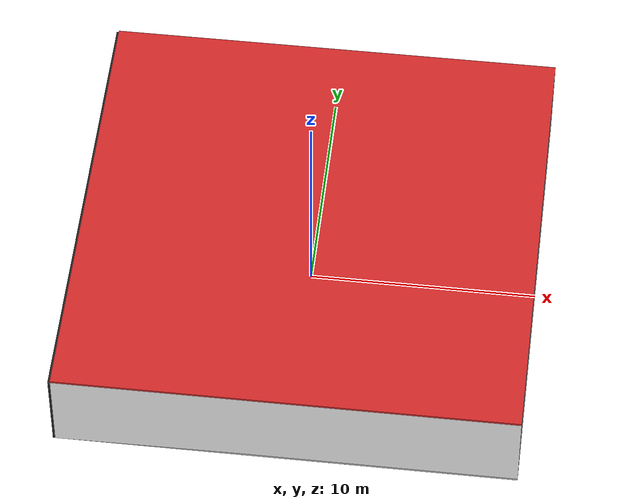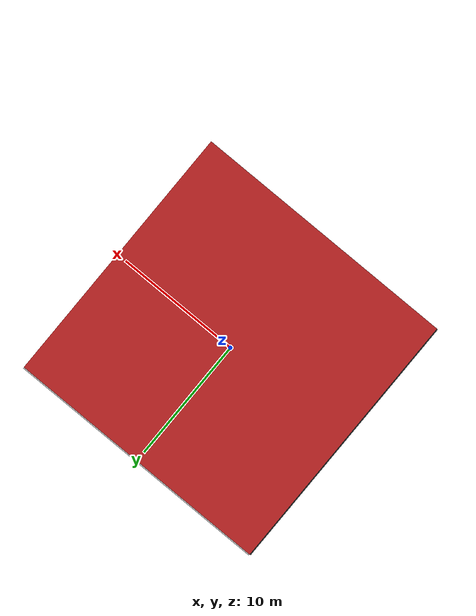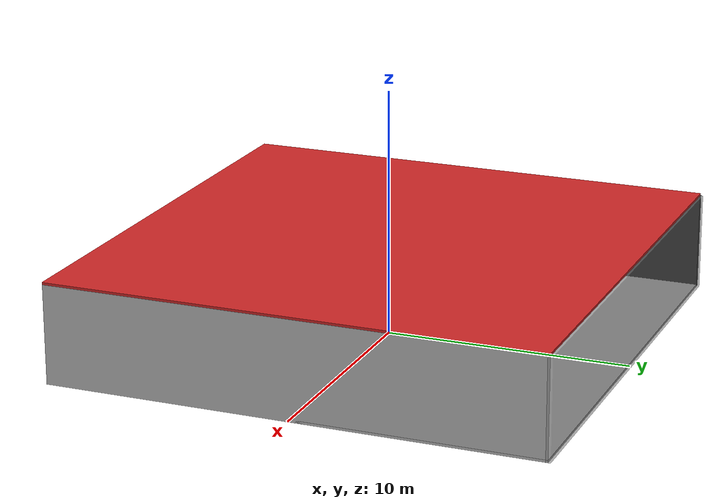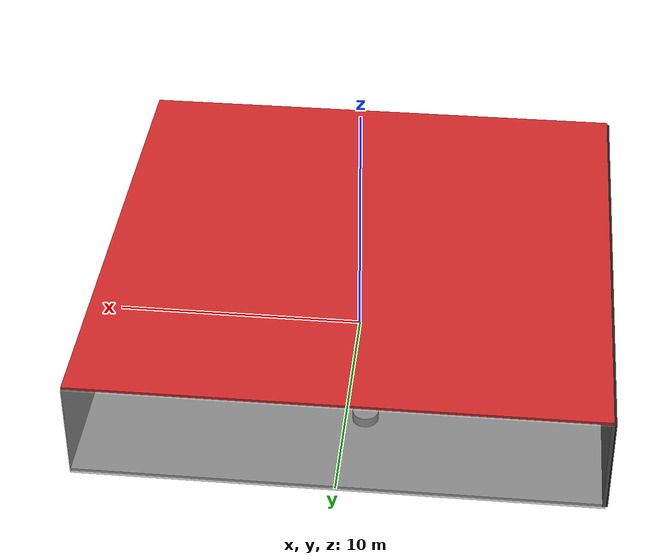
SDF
<sdf version="1.4">
 <world name="default">
  <physics type="ode">
   <max_step_size>0.001</max_step_size>
   <real_time_factor>1</real_time_factor>
   <real_time_update_rate>1000</real_time_update_rate>
   <gravity>0 0 -9.8</gravity>
  </physics>
  <scene><ambient>0.4 0.4 0.4 1</ambient><background>0.7 0.7 0.7 1</background><shadows>1</shadows></scene>
  <model name="Surrounding">
   <static>1</static>
   <link name="Ceiling">
    <collision name="Ceiling_Collision"><geometry><box><size>20 20 0.1</size></box></geometry></collision>
    <visual name="Ceiling_Visual">
     <geometry><box><size>20 20 0.1</size></box></geometry>
     <material>
      <script><uri>file://media/materials/scripts/gazebo.material</uri><name>Gazebo/Red</name></script>
     </material>
    </visual>
    <pose>0 0 4.05 0 0 0</pose>
   </link>
   <link name="Wall_South">
    <collision name="Wall_South_Collision">
     <geometry><box><size>20 0 4</size></box></geometry>
     <pose>0 0 2 0 -0 0</pose>
    </collision>
    <visual name="Wall_South_Visual">
     <pose>0 0 2 0 -0 0</pose>
     <geometry><box><size>20 0 4</size></box></geometry>
     <material>
      <script><uri>file://media/materials/scripts/gazebo.material</uri><name>Gazebo/White</name></script>
     </material>
    </visual>
    <velocity_decay><linear>0</linear><angular>0</angular></velocity_decay>
    <pose>0 -10 0 0 -0 0</pose>
   </link>
   <link name="Wall_East">
    <collision name="Wall_21_Collision">
     <geometry><box><size>20 0 4</size></box></geometry>
     <pose>0 0 2 0 -0 0</pose>
    </collision>
    <visual name="Wall_21_Visual">
     <pose>0 0 2 0 -0 0</pose>
     <geometry><box><size>20 0 4</size></box></geometry>
     <material>
      <script><uri>file://media/materials/scripts/gazebo.material</uri><name>Gazebo/Pioneer2Body</name></script>
     </material>
    </visual>
    <velocity_decay><linear>0</linear><angular>0</angular></velocity_decay>
    <pose>10 0 0 0 -0 1.5708</pose>
   </link>
   <link name="Wall_North">
    <collision name="Wall_22_Collision">
     <geometry><box><size>20 0.2 4</size></box></geometry>
     <pose>0 0 2 0 -0 0</pose>
    </collision>
    <visual name="Wall_22_Visual">
     <pose>0 0 2 0 -0 0</pose>
     <geometry><box><size>20 0.2 4</size></box></geometry>
     <material>
      <script><uri>file://media/materials/scripts/gazebo.material</uri><name>Gazebo/GreyTransparent</name></script>
     </material>
    </visual>
    <velocity_decay><linear>0</linear><angular>0</angular></velocity_decay>
    <pose>0 10 0 0 -0 0</pose>
   </link>
   <link name="Wall_West">
    <collision name="Wall_23_Collision">
     <geometry><box><size>20 0.2 4</size></box></geometry>
     <pose>0 0 2 0 -0 0</pose>
    </collision>
    <visual name="Wall_23_Visual">
     <pose>0 0 2 0 -0 0</pose>
     <geometry><box><size>20 0.2 4</size></box></geometry>
     <material>
      <script><uri>file://media/materials/scripts/gazebo.material</uri><name>Gazebo/FlatBlack</name></script>
     </material>
    </visual>
    <velocity_decay><linear>0</linear><angular>0</angular></velocity_decay>
    <pose>-10 0 0 0 0 -1.5708</pose>
   </link>
   <link name="Ground_link">
    <collision name="collision">
     <pose>0 0 .05 0 -0 0</pose>
     <geometry><box><size>20 20 0.1</size></box></geometry>
    </collision>
    <visual name="visual">
     <pose>0 0 .05 0 -0 0</pose>
     <geometry><box><size>20 20 0.1</size></box></geometry>
     <material>
      <script><uri>file://media/materials/scripts/gazebo.material</uri><name>Gazebo/LightOff</name></script>
     </material>
    </visual>
   </link>
   <static>1</static>
  </model>
  <spherical_coordinates>
   <surface_model>EARTH_WGS84</surface_model>
   <latitude_deg>0</latitude_deg>
   <longitude_deg>0</longitude_deg>
   <elevation>0</elevation>
   <heading_deg>0</heading_deg>
  </spherical_coordinates>
  <light name="lightball_0" type="diffuse">
   <diffuse>0.8 0.8 0.8 1</diffuse>
   <specular>0.2 0.2 0.2 1</specular>
   <attenuation>
    <range>100</range>
    <constant>0.7</constant>
    <linear>0.01</linear>
    <quadratic>0.001</quadratic>
   </attenuation>
   <direction>-0.5 0.1 -0.9</direction>
   <pose>-2.09617624418 -4.37894143813 0.701856498005 0 0 0</pose>
  </light>
  <light name="lightball_1" type="diffuse">
   <diffuse>0.8 0.8 0.8 1</diffuse>
   <specular>0.2 0.2 0.2 1</specular>
   <attenuation>
    <range>100</range>
    <constant>0.7</constant>
    <linear>0.01</linear>
    <quadratic>0.001</quadratic>
   </attenuation>
   <direction>-0.5 0.1 -0.9</direction>
   <pose>-6.95757819707 -0.821199038891 1.54861117534 0 0 0</pose>
  </light>
  <light name="lightball_2" type="diffuse">
   <diffuse>0.8 0.8 0.8 1</diffuse>
   <specular>0.2 0.2 0.2 1</specular>
   <attenuation>
    <range>100</range>
    <constant>0.7</constant>
    <linear>0.01</linear>
    <quadratic>0.001</quadratic>
   </attenuation>
   <direction>-0.5 0.1 -0.9</direction>
   <pose>-3.22254020311 -0.803285963348 1.02810823941 0 0 0</pose>
  </light>
  <light name="lightball_3" type="diffuse">
   <diffuse>0.8 0.8 0.8 1</diffuse>
   <specular>0.2 0.2 0.2 1</specular>
   <attenuation>
    <range>100</range>
    <constant>0.7</constant>
    <linear>0.01</linear>
    <quadratic>0.001</quadratic>
   </attenuation>
   <direction>-0.5 0.1 -0.9</direction>
   <pose>2.42219168296 -9.76876635482 0.814189282309 0 0 0</pose>
  </light>
  <light name="lightball_4" type="diffuse">
   <diffuse>0.8 0.8 0.8 1</diffuse>
   <specular>0.2 0.2 0.2 1</specular>
   <attenuation>
    <range>100</range>
    <constant>0.7</constant>
    <linear>0.01</linear>
    <quadratic>0.001</quadratic>
   </attenuation>
   <direction>-0.5 0.1 -0.9</direction>
   <pose>-0.301148699283 6.43738485183 2.91044456131 0 0 0</pose>
  </light>
  <light name="lightball_5" type="diffuse">
   <diffuse>0.8 0.8 0.8 1</diffuse>
   <specular>0.2 0.2 0.2 1</specular>
   <attenuation>
    <range>100</range>
    <constant>0.7</constant>
    <linear>0.01</linear>
    <quadratic>0.001</quadratic>
   </attenuation>
   <direction>-0.5 0.1 -0.9</direction>
   <pose>-0.705719322584 -4.65320157944 1.22968699333 0 0 0</pose>
  </light>
  <light name="lightball_6" type="diffuse">
   <diffuse>0.8 0.8 0.8 1</diffuse>
   <specular>0.2 0.2 0.2 1</specular>
   <attenuation>
    <range>100</range>
    <constant>0.7</constant>
    <linear>0.01</linear>
    <quadratic>0.001</quadratic>
   </attenuation>
   <direction>-0.5 0.1 -0.9</direction>
   <pose>4.8845411788 -2.57471267518 2.24920246277 0 0 0</pose>
  </light>
  <include><uri>model://table</uri><pose>-6.88374039235 -7.68379618942 0 0 0 1.724351192</pose></include>
  <include>
   <uri>model://construction_cone</uri>
   <pose>-7.01063702106 -2.02840211892 0 0 0 0.921934962984</pose>
  </include>
  <include>
   <uri>model://textured_shapes</uri>
   <pose>-0.739010527954 4.59284596365 0 0 0 0.0360677298173</pose>
  </include>
  <include><uri>model://cabinet</uri><pose>6.85444368096 -5.02337613867 0 0 0 2.89761398737</pose></include>
 </world>
</sdf>

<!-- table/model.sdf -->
<sdf version="1.5">
  <model name="table">
    <static>true</static>
    <link name="link">
      <collision name="surface">
        <pose>0 0 1.0 0 0 0</pose>
        <geometry>
          <box>
            <size>1.5 0.8 0.03</size>
          </box>
        </geometry>
        <surface>
          <friction>
            <ode>
              <mu>0.6</mu>
              <mu2>0.6</mu2>
            </ode>
          </friction>
        </surface>
      </collision>
      <visual name="visual1">
        <pose>0 0 1.0 0 0 0</pose>
        <geometry>
          <box>
            <size>1.5 0.8 0.03</size>
          </box>
        </geometry>
        <material>
          <script>
            <uri>model://media/materials/scripts/gazebo.material</uri>
            <name>Gazebo/Wood</name>
          </script>
        </material>
      </visual>
      <collision name="front_left_leg">
        <pose>0.68 0.38 0.5 0 0 0</pose>
        <geometry>
          <cylinder>
            <radius>0.02</radius>
            <length>1.0</length>
          </cylinder>
        </geometry>
      </collision>
      <visual name="front_left_leg">
        <pose>0.68 0.38 0.5 0 0 0</pose>
        <geometry>
          <cylinder>
            <radius>0.02</radius>
            <length>1.0</length>
          </cylinder>
        </geometry>
        <material>
          <script>
            <uri>model://media/materials/scripts/gazebo.material</uri>
            <name>Gazebo/Grey</name>
          </script>
        </material>
      </visual>
      <collision name="front_right_leg">
        <pose>0.68 -0.38 0.5 0 0 0</pose>
        <geometry>
          <cylinder>
            <radius>0.02</radius>
            <length>1.0</length>
          </cylinder>
        </geometry>
      </collision>
      <visual name="front_right_leg">
        <pose>0.68 -0.38 0.5 0 0 0</pose>
        <geometry>
          <cylinder>
            <radius>0.02</radius>
            <length>1.0</length>
          </cylinder>
        </geometry>
        <material>
          <script>
            <uri>model://media/materials/scripts/gazebo.material</uri>
            <name>Gazebo/Grey</name>
          </script>
        </material>
      </visual>
      <collision name="back_right_leg">
        <pose>-0.68 -0.38 0.5 0 0 0</pose>
        <geometry>
          <cylinder>
            <radius>0.02</radius>
            <length>1.0</length>
          </cylinder>
        </geometry>
      </collision>
      <visual name="back_right_leg">
        <pose>-0.68 -0.38 0.5 0 0 0</pose>
        <geometry>
          <cylinder>
            <radius>0.02</radius>
            <length>1.0</length>
          </cylinder>
        </geometry>
        <material>
          <script>
            <uri>model://media/materials/scripts/gazebo.material</uri>
            <name>Gazebo/Grey</name>
          </script>
        </material>
      </visual>
      <collision name="back_left_leg">
        <pose>-0.68 0.38 0.5 0 0 0</pose>
        <geometry>
          <cylinder>
            <radius>0.02</radius>
            <length>1.0</length>
          </cylinder>
        </geometry>
      </collision>
      <visual name="back_left_leg">
        <pose>-0.68 0.38 0.5 0 0 0</pose>
        <geometry>
          <cylinder>
            <radius>0.02</radius>
            <length>1.0</length>
          </cylinder>
        </geometry>
        <material>
          <script>
            <uri>model://media/materials/scripts/gazebo.material</uri>
            <name>Gazebo/Grey</name>
          </script>
        </material>
      </visual>
    </link>
  </model>
</sdf>

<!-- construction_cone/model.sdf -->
<sdf version="1.5">
  <model name="Construction Cone">
    <link name="link">
      <collision name="collision">
        <geometry>
          <mesh>
            <scale>10 10 10</scale>
            <uri>file://isr-testbed/construction_cone/meshes/construction_cone.dae</uri>
          </mesh>
        </geometry>
      </collision>
      <visual name="visual">
        <geometry>
          <mesh>
            <scale>10 10 10</scale>
            <uri>file://isr-testbed/construction_cone/meshes/construction_cone.dae</uri>
          </mesh>
        </geometry>
      </visual>
    </link>
  </model>
</sdf>

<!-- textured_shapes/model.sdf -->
<sdf version="1.6">
  <model name="textured_shapes">
    <pose>0 0 0.5 0 0 0</pose>
    <link name="box">
      <pose>0 -1.5 0 0 0 0</pose>
      <collision name="collision">
        <geometry>
          <box>
            <size>1 1 1</size>
          </box>
        </geometry>
      </collision>
      <visual name="visual">
        <geometry>
          <box>
            <size>1 1 1</size>
          </box>
        </geometry>
        <material>
          <script>
            <uri>model://../model_source/models/textured_shapes/materials/scripts</uri>
            <uri>model://../model_source/models/textured_shapes/materials/textures</uri>
            <name>TexturedShape/Squares</name>
          </script>
        </material>
      </visual>
    </link>
    <link name="sphere">
      <collision name="collision">
        <geometry>
          <sphere>
            <radius>0.5</radius>
          </sphere>
        </geometry>
      </collision>
      <visual name="visual">
        <geometry>
          <sphere>
            <radius>0.5</radius>
          </sphere>
        </geometry>
        <material>
          <script>
            <uri>model://../model_source/models/textured_shapes/materials/scripts</uri>
            <uri>model://../model_source/models/textured_shapes/materials/textures</uri>
            <name>TexturedShape/Squares</name>
          </script>
        </material>
      </visual>
    </link>
    <link name="cylinder">
      <pose>0 1.5 0 0 0 0</pose>
      <collision name="collision">
        <geometry>
          <cylinder>
            <radius>0.5</radius>
            <length>1</length>
          </cylinder>
        </geometry>
      </collision>
      <visual name="visual">
        <geometry>
          <cylinder>
            <radius>0.5</radius>
            <length>1</length>
          </cylinder>
        </geometry>
        <material>
          <script>
            <uri>model://../model_source/models/textured_shapes/materials/scripts</uri>
            <uri>model://../model_source/models/textured_shapes/materials/textures</uri>
            <name>TexturedShape/Squares</name>
          </script>
        </material>
      </visual>
    </link>
  </model>
</sdf>

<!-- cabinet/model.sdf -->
<sdf version="1.5">
  <model name="cabinet">
    <static>true</static>
    <link name="cabinet_bottom_plate">
      <inertial>
        <pose>0 0 -1 0 0 0</pose>
        <inertia>
          <ixx>2.050000</ixx>
          <ixy>0</ixy>
          <ixz>0</ixz>
          <iyy>2.050000</iyy>
          <iyz>0</iyz>
          <izz>2.050000</izz>
        </inertia>
        <mass>25.000000</mass>
      </inertial>
      <collision name="cabinet_bottom_plate_geom">
        <pose>0 0 0.010000 0 0 0</pose>
        <geometry>
          <box>
            <size>0.450000 0.450000 0.020000</size>
          </box>
        </geometry>
      </collision>
      <visual name="cabinet_bottom_plate_geom_visual">
        <pose>0 0 0.010000 0 0 0</pose>
        <geometry>
          <box>
            <size>0.450000 0.450000 0.020000</size>
          </box>
        </geometry>
        <material>
          <script>
            <uri>model://media/materials/scripts/gazebo.material</uri>
            <name>Gazebo/Wood</name>
          </script>
        </material>
      </visual>
      <collision name="cabinet_bottom_plate_geom_cabinet_back_plate">
        <pose>0.235000 0 0.510000 0 0 0</pose>
        <geometry>
          <box>
            <size>0.020000 0.450000 1.020000</size>
          </box>
        </geometry>
      </collision>
      <visual name="cabinet_bottom_plate_geom_cabinet_back_plate_visual">
        <pose>0.235000 0 0.510000 0 0 0</pose>
        <geometry>
          <box>
            <size>0.020000 0.450000 1.020000</size>
          </box>
        </geometry>
        <material>
          <script>
            <uri>model://media/materials/scripts/gazebo.material</uri>
            <name>Gazebo/Wood</name>
          </script>
        </material>
      </visual>
      <collision name="cabinet_bottom_plate_geom_cabinet_left_plate">
        <pose>0 0.235000 0.510000 0 0 0</pose>
        <geometry>
          <box>
            <size>0.450000 0.020000 1.020000</size>
          </box>
        </geometry>
      </collision>
      <visual name="cabinet_bottom_plate_geom_cabinet_left_plate_visual">
        <pose>0 0.235000 0.510000 0 0 0</pose>
        <geometry>
          <box>
            <size>0.450000 0.020000 1.020000</size>
          </box>
        </geometry>
        <material>
          <script>
            <uri>model://media/materials/scripts/gazebo.material</uri>
            <name>Gazebo/Wood</name>
          </script>
        </material>
      </visual>
      <collision name="cabinet_bottom_plate_geom_cabinet_middle_plate">
        <pose>0 0 0.510000 0 0 0</pose>
        <geometry>
          <box>
            <size>0.450000 0.450000 0.020000</size>
          </box>
        </geometry>
      </collision>
      <visual name="cabinet_bottom_plate_geom_cabinet_middle_plate_visual">
        <pose>0 0 0.510000 0 0 0</pose>
        <geometry>
          <box>
            <size>0.450000 0.450000 0.020000</size>
          </box>
        </geometry>
        <material>
          <script>
            <uri>model://media/materials/scripts/gazebo.material</uri>
            <name>Gazebo/Wood</name>
          </script>
        </material>
      </visual>
      <collision name="cabinet_bottom_plate_geom_cabinet_right_plate">
        <pose>0 -0.235000 0.510000 0 0 0</pose>
        <geometry>
          <box>
            <size>0.450000 0.020000 1.020000</size>
          </box>
        </geometry>
      </collision>
      <visual name="cabinet_bottom_plate_geom_cabinet_right_plate_visual">
        <pose>0 -0.235000 0.510000 0 0 0</pose>
        <geometry>
          <box>
            <size>0.450000 0.020000 1.020000</size>
          </box>
        </geometry>
        <material>
          <script>
            <uri>model://media/materials/scripts/gazebo.material</uri>
            <name>Gazebo/Wood</name>
          </script>
        </material>
      </visual>
      <collision name="cabinet_bottom_plate_geom_cabinet_top_plate">
        <pose>0 0 1.010000 0 0 0</pose>
        <geometry>
          <box>
            <size>0.450000 0.450000 0.020000</size>
          </box>
        </geometry>
      </collision>
      <visual name="cabinet_bottom_plate_geom_cabinet_top_plate_visual">
        <pose>0 0 1.010000 0 0 0</pose>
        <geometry>
          <box>
            <size>0.450000 0.450000 0.020000</size>
          </box>
        </geometry>
        <material>
          <script>
            <uri>model://media/materials/scripts/gazebo.material</uri>
            <name>Gazebo/Wood</name>
          </script>
        </material>
      </visual>
    </link>
  </model>
</sdf>
